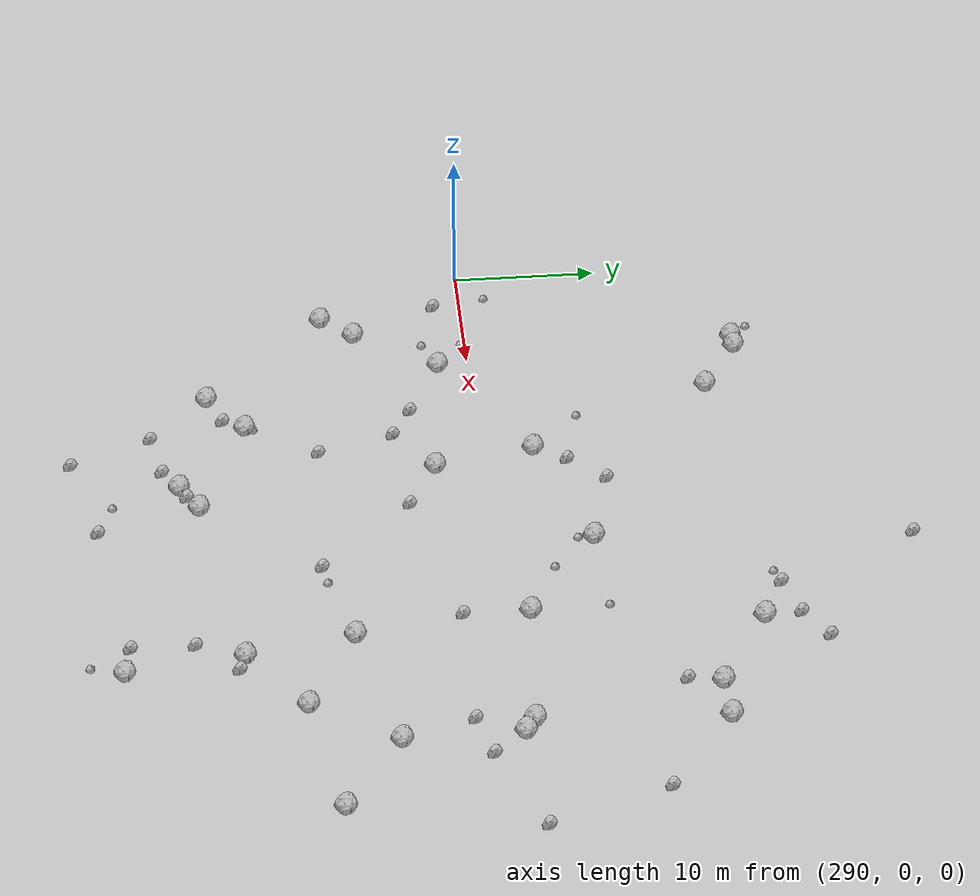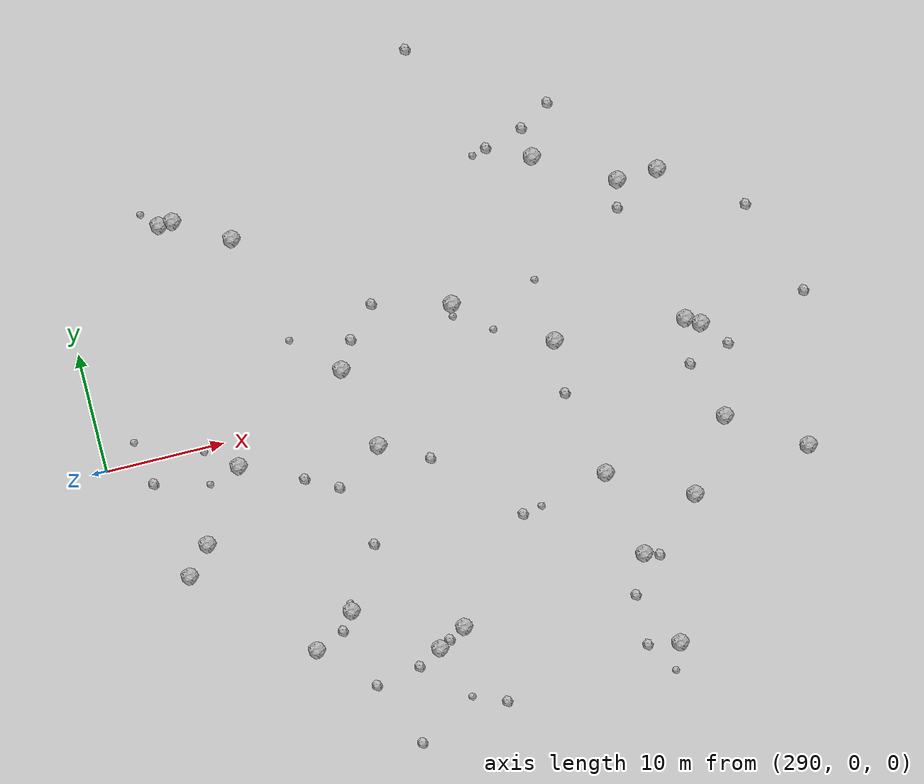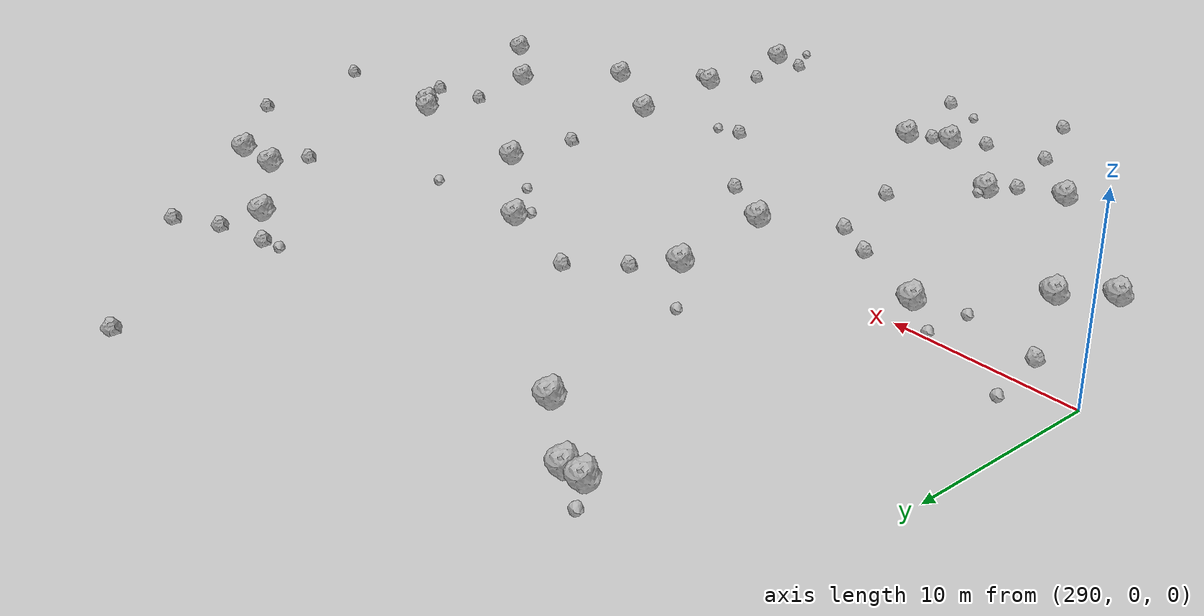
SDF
<sdf version="1.6">
 <world name="default">
  <include><uri>model://sun</uri></include>
  <model name="rock1_8_2">
   <include><uri>model://rock1</uri><pose>331.80527817529094 -17.10950977453687 0.5 0 0 0</pose></include>
  </model>
  <model name="rock1_8_3">
   <include><uri>model://rock1</uri><pose>330.5251969601623 17.102558700763076 0.5 0 0 0</pose></include>
  </model>
  <model name="rock1_8_4">
   <include><uri>model://rock1</uri><pose>310.9844596753866 3.6524784951807945 0.5 0 0 0</pose></include>
  </model>
  <model name="rock1_8_5">
   <include><uri>model://rock1</uri><pose>339.71585940412757 1.0500169487500735 0.5 0 0 0</pose></include>
  </model>
  <model name="rock1_8_6">
   <include><uri>model://rock1</uri><pose>300.24503129933953 18.898834635705548 0.5 0 0 0</pose></include>
  </model>
  <model name="rock1_8_7">
   <include><uri>model://rock1</uri><pose>299.0917472018538 18.836256906335556 0.5 0 0 0</pose></include>
  </model>
  <model name="rock1_8_8">
   <include><uri>model://rock1</uri><pose>328.74964674523983 1.8176664340666981 0.5 0 0 0</pose></include>
  </model>
  <model name="rock1_8_9">
   <include><uri>model://rock1</uri><pose>347.1698772878181 -11.559946543352211 0.5 0 0 0</pose></include>
  </model>
  <model name="rock1_8_10">
   <include><uri>model://rock1</uri><pose>321.1589051802471 6.789544987005485 0.5 0 0 0</pose></include>
  </model>
  <model name="rock1_8_11">
   <include><uri>model://rock1</uri><pose>294.7087769020668 -10.053616386515646 0.5 0 0 0</pose></include>
  </model>
  <model name="rock1_8_12">
   <include><uri>model://rock1</uri><pose>330.2733923293333 -9.847731288752762 0.5 0 0 0</pose></include>
  </model>
  <model name="rock1_8_13">
   <include><uri>model://rock1</uri><pose>303.51729328308477 -18.502561345162906 0.5 0 0 0</pose></include>
  </model>
  <model name="rock1_8_14">
   <include><uri>model://rock1</uri><pose>313.4740693117077 -20.76161222652359 0.5 0 0 0</pose></include>
  </model>
  <model name="rock1_8_15">
   <include><uri>model://rock1</uri><pose>340.8648783518972 0.3674849632222532 0.5 0 0 0</pose></include>
  </model>
  <model name="rock1_8_16">
   <include><uri>model://rock1</uri><pose>337.0855271852681 -13.303471468193173 0.5 0 0 0</pose></include>
  </model>
  <model name="rock1_8_17">
   <include><uri>model://rock1</uri><pose>307.0780077185849 -16.013213301978134 0.5 0 0 0</pose></include>
  </model>
  <model name="rock1_8_18">
   <include><uri>model://rock1</uri><pose>315.8384842074041 -19.49082529986269 0.5 0 0 0</pose></include>
  </model>
  <model name="rock1_8_19">
   <include><uri>model://rock1</uri><pose>296.76580092677045 -7.830301741406856 0.5 0 0 0</pose></include>
  </model>
  <model name="rock1_8_20">
   <include><uri>model://rock1</uri><pose>332.9702152778077 -24.97936721383913 0.5 0 0 0</pose></include>
  </model>
  <model name="rock1_8_21">
   <include><uri>model://rock1</uri><pose>300.8123770257426 -2.1215897763158296 0.5 0 0 0</pose></include>
  </model>
  <model name="rock1_8_22">
   <include><uri>model://rock1</uri><pose>312.47822151658244 -3.1995566847569847 0.5 0 0 0</pose></include>
  </model>
  <model name="rock1_8_23">
   <include><uri>model://rock1</uri><pose>340.3828204336232 13.661193445729225 0.5 0 0 0</pose></include>
  </model>
  <model name="rock1_8_24">
   <include><uri>model://rock1</uri><pose>341.0068681912573 -7.57153781563721 0.5 0 0 0</pose></include>
  </model>
  <model name="rock1_8_25">
   <include><uri>model://rock1</uri><pose>304.68849623621674 16.3291963469308 0.5 0 0 0</pose></include>
  </model>
  <model name="rock1_8_26">
   <include><uri>model://rock1</uri><pose>336.9611911124188 13.55963253006255 0.5 0 0 0</pose></include>
  </model>
  <model name="rock2_8_0">
   <include><uri>model://rock2</uri><pose>310.2057449972598 -28.070291079521986 0.3 0 0 0</pose></include>
  </model>
  <model name="rock2_8_1">
   <include><uri>model://rock2</uri><pose>317.8670161290183 -26.37262486649871 0.3 0 0 0</pose></include>
  </model>
  <model name="rock2_8_2">
   <include><uri>model://rock2</uri><pose>322.38365094583435 28.22791244669775 0.3 0 0 0</pose></include>
  </model>
  <model name="rock2_8_3">
   <include><uri>model://rock2</uri><pose>333.0301751011439 -17.522515698113054 0.3 0 0 0</pose></include>
  </model>
  <model name="rock2_8_4">
   <include><uri>model://rock2</uri><pose>330.2229872482949 19.60760644368373 0.3 0 0 0</pose></include>
  </model>
  <model name="rock2_8_5">
   <include><uri>model://rock2</uri><pose>349.82144695821427 0.9903572117002355 0.3 0 0 0</pose></include>
  </model>
  <model name="rock2_8_6">
   <include><uri>model://rock2</uri><pose>330.32463634989887 -20.310739885555073 0.3 0 0 0</pose></include>
  </model>
  <model name="rock2_8_7">
   <include><uri>model://rock2</uri><pose>314.6575584597922 8.347764995799722 0.3 0 0 0</pose></include>
  </model>
  <model name="rock2_8_8">
   <include><uri>model://rock2</uri><pose>305.86275920953386 -4.456235026479959 0.3 0 0 0</pose></include>
  </model>
  <model name="rock2_8_9">
   <include><uri>model://rock2</uri><pose>322.8048409208443 -11.565155005864682 0.3 0 0 0</pose></include>
  </model>
  <model name="rock2_8_10">
   <include><uri>model://rock2</uri><pose>336.40894516952864 11.307336409730866 0.3 0 0 0</pose></include>
  </model>
  <model name="rock2_8_11">
   <include><uri>model://rock2</uri><pose>311.4700251929144 -21.857858757371492 0.3 0 0 0</pose></include>
  </model>
  <model name="rock2_8_12">
   <include><uri>model://rock2</uri><pose>330.3035201058554 -24.548896541582153 0.3 0 0 0</pose></include>
  </model>
  <model name="rock2_8_13">
   <include><uri>model://rock2</uri><pose>310.19213267592164 -11.082642172480405 0.3 0 0 0</pose></include>
  </model>
  <model name="rock2_8_14">
   <include><uri>model://rock2</uri><pose>332.7964196563643 21.16448894292374 0.3 0 0 0</pose></include>
  </model>
  <model name="rock2_8_15">
   <include><uri>model://rock2</uri><pose>308.5211613519926 -5.83968353099289 0.3 0 0 0</pose></include>
  </model>
  <model name="rock2_8_16">
   <include><uri>model://rock2</uri><pose>305.97965895886927 -17.4921539872618 0.3 0 0 0</pose></include>
  </model>
  <model name="rock2_8_17">
   <include><uri>model://rock2</uri><pose>307.65800573779364 -22.540986908128655 0.3 0 0 0</pose></include>
  </model>
  <model name="rock2_8_18">
   <include><uri>model://rock2</uri><pose>312.3086575833801 5.867216708751492 0.3 0 0 0</pose></include>
  </model>
  <model name="rock2_8_19">
   <include><uri>model://rock2</uri><pose>314.4202202085878 -20.272068980428354 0.3 0 0 0</pose></include>
  </model>
  <model name="rock2_8_20">
   <include><uri>model://rock2</uri><pose>342.70091740789155 -1.7954432257627069 0.3 0 0 0</pose></include>
  </model>
  <model name="rock2_8_21">
   <include><uri>model://rock2</uri><pose>293.5821431488585 -1.9004400454150172 0.3 0 0 0</pose></include>
  </model>
  <model name="rock2_8_22">
   <include><uri>model://rock2</uri><pose>328.55045891594966 -2.636129557834284 0.3 0 0 0</pose></include>
  </model>
  <model name="rock2_8_23">
   <include><uri>model://rock2</uri><pose>346.811319414357 9.094781460255554 0.3 0 0 0</pose></include>
  </model>
  <model name="rock2_8_24">
   <include><uri>model://rock2</uri><pose>316.42872952590733 -5.2405918716588005 0.3 0 0 0</pose></include>
  </model>
  <model name="rock2_8_25">
   <include><uri>model://rock2</uri><pose>339.22803134099485 -2.71816801873749 0.3 0 0 0</pose></include>
  </model>
  <model name="rock2_8_26">
   <include><uri>model://rock2</uri><pose>326.9526590932503 18.688334753149576 0.3 0 0 0</pose></include>
  </model>
  <model name="rock3_8_0">
   <include><uri>model://rock3</uri><pose>324.0043315834632 3.8870731471968583 0.2 0 0 0</pose></include>
  </model>
  <model name="rock3_8_1">
   <include><uri>model://rock3</uri><pose>320.9824551273272 5.73196583890774 0.2 0 0 0</pose></include>
  </model>
  <model name="rock3_8_2">
   <include><uri>model://rock3</uri><pose>328.30475931978924 7.095658578375094 0.2 0 0 0</pose></include>
  </model>
  <model name="rock3_8_3">
   <include><uri>model://rock3</uri><pose>325.72015336732443 18.320169858721115 0.2 0 0 0</pose></include>
  </model>
  <model name="rock3_8_4">
   <include><uri>model://rock3</uri><pose>298.2504830131385 -0.33558737920099446 0.2 0 0 0</pose></include>
  </model>
  <model name="rock3_8_5">
   <include><uri>model://rock3</uri><pose>298.1230315852653 -3.064687228165276 0.2 0 0 0</pose></include>
  </model>
  <model name="rock3_8_6">
   <include><uri>model://rock3</uri><pose>307.0727891845462 -15.429997753464269 0.2 0 0 0</pose></include>
  </model>
  <model name="rock3_8_7">
   <include><uri>model://rock3</uri><pose>324.4341890725234 -11.29704151040865 0.2 0 0 0</pose></include>
  </model>
  <model name="rock3_8_8">
   <include><uri>model://rock3</uri><pose>332.04888833830165 -27.20293818577291 0.2 0 0 0</pose></include>
  </model>
  <model name="rock3_8_9">
   <include><uri>model://rock3</uri><pose>292.7739815540994 1.7937412540668376 0.2 0 0 0</pose></include>
  </model>
  <model name="rock3_8_10">
   <include><uri>model://rock3</uri><pose>307.30757868364674 6.998157758450077 0.2 0 0 0</pose></include>
  </model>
  <model name="rock3_8_11">
   <include><uri>model://rock3</uri><pose>315.10226616269705 -25.34222066928661 0.2 0 0 0</pose></include>
  </model>
  <model name="rock3_8_12">
   <include><uri>model://rock3</uri><pose>297.7584151247187 20.07461597497516 0.2 0 0 0</pose></include>
  </model>
 </world>
</sdf>
